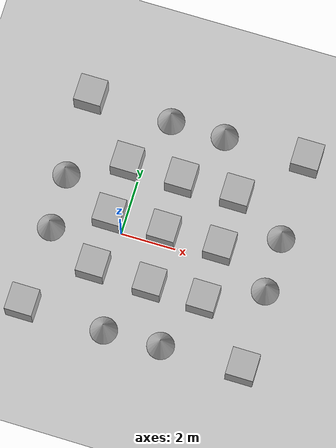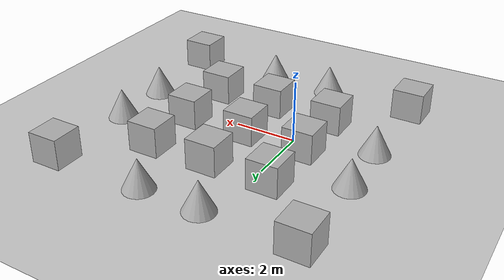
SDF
<sdf version='1.10'>
  <world name='empty'>
    <physics name='1ms' type='ignored'>
      <max_step_size>0.001</max_step_size>
      <real_time_factor>1</real_time_factor>
      <real_time_update_rate>1000</real_time_update_rate>
    </physics>
    <plugin name='gz::sim::systems::Physics' filename='gz-sim-physics-system'/>
    <plugin name='gz::sim::systems::UserCommands' filename='gz-sim-user-commands-system'/>
    <plugin name='gz::sim::systems::SceneBroadcaster' filename='gz-sim-scene-broadcaster-system'/>
    <plugin name='gz::sim::systems::Contact' filename='gz-sim-contact-system'/>
    <gravity>0 0 -9.8000000000000007</gravity>
    <magnetic_field>5.5644999999999998e-06 2.2875799999999999e-05 -4.2388400000000002e-05</magnetic_field>
    <atmosphere type='adiabatic'/>
    <scene>
      <ambient>0.400000006 0.400000006 0.400000006 1</ambient>
      <background>0.699999988 0.699999988 0.699999988 1</background>
      <shadows>true</shadows>
    </scene>
    <model name='ground_plane'>
      <static>true</static>
      <link name='link'>
        <collision name='collision'>
          <geometry>
            <plane>
              <normal>0 0 1</normal>
              <size>100 100</size>
            </plane>
          </geometry>
          <surface>
            <friction>
              <ode/>
            </friction>
            <bounce/>
            <contact/>
          </surface>
        </collision>
        <visual name='visual'>
          <geometry>
            <plane>
              <normal>0 0 1</normal>
              <size>100 100</size>
            </plane>
          </geometry>
          <material>
            <ambient>0.800000012 0.800000012 0.800000012 1</ambient>
            <diffuse>0.800000012 0.800000012 0.800000012 1</diffuse>
            <specular>0.800000012 0.800000012 0.800000012 1</specular>
          </material>
        </visual>
        <pose>0 0 0 0 0 0</pose>
        <inertial>
          <pose>0 0 0 0 0 0</pose>
          <mass>1</mass>
          <inertia>
            <ixx>1</ixx>
            <ixy>0</ixy>
            <ixz>0</ixz>
            <iyy>1</iyy>
            <iyz>0</iyz>
            <izz>1</izz>
          </inertia>
        </inertial>
        <enable_wind>false</enable_wind>
      </link>
      <pose>0 0 0 0 0 0</pose>
      <self_collide>false</self_collide>
    </model>
    <model name='box'>
      <pose>1.4828880421105337 2.4810039725915605 0.5 0 0 0</pose>
      <link name='box_link'>
        <inertial>
          <inertia>
            <ixx>0.16666</ixx>
            <ixy>0</ixy>
            <ixz>0</ixz>
            <iyy>0.16666</iyy>
            <iyz>0</iyz>
            <izz>0.16666</izz>
          </inertia>
          <mass>1</mass>
          <pose>0 0 0 0 0 0</pose>
        </inertial>
        <collision name='box_collision'>
          <geometry>
            <box>
              <size>1 1 1</size>
            </box>
          </geometry>
          <surface>
            <friction>
              <ode/>
            </friction>
            <bounce/>
            <contact/>
          </surface>
        </collision>
        <visual name='box_visual'>
          <geometry>
            <box>
              <size>1 1 1</size>
            </box>
          </geometry>
          <material>
            <ambient>0.300000012 0.300000012 0.300000012 1</ambient>
            <diffuse>0.699999988 0.699999988 0.699999988 1</diffuse>
            <specular>1 1 1 1</specular>
          </material>
        </visual>
        <pose>0 0 0 0 0 0</pose>
        <enable_wind>false</enable_wind>
      </link>
      <static>false</static>
      <self_collide>false</self_collide>
    </model>
    <model name='box_0'>
      <pose>-0.53700657123775297 2.4965526327853604 0.5 0 0 0</pose>
      <link name='box_link'>
        <inertial>
          <inertia>
            <ixx>0.16666</ixx>
            <ixy>0</ixy>
            <ixz>0</ixz>
            <iyy>0.16666</iyy>
            <iyz>0</iyz>
            <izz>0.16666</izz>
          </inertia>
          <mass>1</mass>
          <pose>0 0 0 0 0 0</pose>
        </inertial>
        <collision name='box_collision'>
          <geometry>
            <box>
              <size>1 1 1</size>
            </box>
          </geometry>
          <surface>
            <friction>
              <ode/>
            </friction>
            <bounce/>
            <contact/>
          </surface>
        </collision>
        <visual name='box_visual'>
          <geometry>
            <box>
              <size>1 1 1</size>
            </box>
          </geometry>
          <material>
            <ambient>0.300000012 0.300000012 0.300000012 1</ambient>
            <diffuse>0.699999988 0.699999988 0.699999988 1</diffuse>
            <specular>1 1 1 1</specular>
          </material>
        </visual>
        <pose>0 0 0 0 0 0</pose>
        <enable_wind>false</enable_wind>
      </link>
      <static>false</static>
      <self_collide>false</self_collide>
    </model>
    <model name='box_1'>
      <pose>3.5292537159104498 2.4985450759173942 0.5 0 0 0</pose>
      <link name='box_link'>
        <inertial>
          <inertia>
            <ixx>0.16666</ixx>
            <ixy>0</ixy>
            <ixz>0</ixz>
            <iyy>0.16666</iyy>
            <iyz>0</iyz>
            <izz>0.16666</izz>
          </inertia>
          <mass>1</mass>
          <pose>0 0 0 0 0 0</pose>
        </inertial>
        <collision name='box_collision'>
          <geometry>
            <box>
              <size>1 1 1</size>
            </box>
          </geometry>
          <surface>
            <friction>
              <ode/>
            </friction>
            <bounce/>
            <contact/>
          </surface>
        </collision>
        <visual name='box_visual'>
          <geometry>
            <box>
              <size>1 1 1</size>
            </box>
          </geometry>
          <material>
            <ambient>0.300000012 0.300000012 0.300000012 1</ambient>
            <diffuse>0.699999988 0.699999988 0.699999988 1</diffuse>
            <specular>1 1 1 1</specular>
          </material>
        </visual>
        <pose>0 0 0 0 0 0</pose>
        <enable_wind>false</enable_wind>
      </link>
      <static>false</static>
      <self_collide>false</self_collide>
    </model>
    <model name='box_2'>
      <pose>3.5005344420189459 0.4923439226642437 0.5 0 0 0</pose>
      <link name='box_link'>
        <inertial>
          <inertia>
            <ixx>0.16666</ixx>
            <ixy>0</ixy>
            <ixz>0</ixz>
            <iyy>0.16666</iyy>
            <iyz>0</iyz>
            <izz>0.16666</izz>
          </inertia>
          <mass>1</mass>
          <pose>0 0 0 0 0 0</pose>
        </inertial>
        <collision name='box_collision'>
          <geometry>
            <box>
              <size>1 1 1</size>
            </box>
          </geometry>
          <surface>
            <friction>
              <ode/>
            </friction>
            <bounce/>
            <contact/>
          </surface>
        </collision>
        <visual name='box_visual'>
          <geometry>
            <box>
              <size>1 1 1</size>
            </box>
          </geometry>
          <material>
            <ambient>0.300000012 0.300000012 0.300000012 1</ambient>
            <diffuse>0.699999988 0.699999988 0.699999988 1</diffuse>
            <specular>1 1 1 1</specular>
          </material>
        </visual>
        <pose>0 0 0 0 0 0</pose>
        <enable_wind>false</enable_wind>
      </link>
      <static>false</static>
      <self_collide>false</self_collide>
    </model>
    <model name='box_3'>
      <pose>1.4412395514182155 0.4785392850820277 0.5 0 0 0</pose>
      <link name='box_link'>
        <inertial>
          <inertia>
            <ixx>0.16666</ixx>
            <ixy>0</ixy>
            <ixz>0</ixz>
            <iyy>0.16666</iyy>
            <iyz>0</iyz>
            <izz>0.16666</izz>
          </inertia>
          <mass>1</mass>
          <pose>0 0 0 0 0 0</pose>
        </inertial>
        <collision name='box_collision'>
          <geometry>
            <box>
              <size>1 1 1</size>
            </box>
          </geometry>
          <surface>
            <friction>
              <ode/>
            </friction>
            <bounce/>
            <contact/>
          </surface>
        </collision>
        <visual name='box_visual'>
          <geometry>
            <box>
              <size>1 1 1</size>
            </box>
          </geometry>
          <material>
            <ambient>0.300000012 0.300000012 0.300000012 1</ambient>
            <diffuse>0.699999988 0.699999988 0.699999988 1</diffuse>
            <specular>1 1 1 1</specular>
          </material>
        </visual>
        <pose>0 0 0 0 0 0</pose>
        <enable_wind>false</enable_wind>
      </link>
      <static>false</static>
      <self_collide>false</self_collide>
    </model>
    <model name='box_4'>
      <pose>-0.5770987817680675 0.48420760536685215 0.5 0 0 0</pose>
      <link name='box_link'>
        <inertial>
          <inertia>
            <ixx>0.16666</ixx>
            <ixy>0</ixy>
            <ixz>0</ixz>
            <iyy>0.16666</iyy>
            <iyz>0</iyz>
            <izz>0.16666</izz>
          </inertia>
          <mass>1</mass>
          <pose>0 0 0 0 0 0</pose>
        </inertial>
        <collision name='box_collision'>
          <geometry>
            <box>
              <size>1 1 1</size>
            </box>
          </geometry>
          <surface>
            <friction>
              <ode/>
            </friction>
            <bounce/>
            <contact/>
          </surface>
        </collision>
        <visual name='box_visual'>
          <geometry>
            <box>
              <size>1 1 1</size>
            </box>
          </geometry>
          <material>
            <ambient>0.300000012 0.300000012 0.300000012 1</ambient>
            <diffuse>0.699999988 0.699999988 0.699999988 1</diffuse>
            <specular>1 1 1 1</specular>
          </material>
        </visual>
        <pose>0 0 0 0 0 0</pose>
        <enable_wind>false</enable_wind>
      </link>
      <static>false</static>
      <self_collide>false</self_collide>
    </model>
    <model name='box_5'>
      <pose>3.5005335865170384 -1.5239197140344469 0.5 0 0 0</pose>
      <link name='box_link'>
        <inertial>
          <inertia>
            <ixx>0.16666</ixx>
            <ixy>0</ixy>
            <ixz>0</ixz>
            <iyy>0.16666</iyy>
            <iyz>0</iyz>
            <izz>0.16666</izz>
          </inertia>
          <mass>1</mass>
          <pose>0 0 0 0 0 0</pose>
        </inertial>
        <collision name='box_collision'>
          <geometry>
            <box>
              <size>1 1 1</size>
            </box>
          </geometry>
          <surface>
            <friction>
              <ode/>
            </friction>
            <bounce/>
            <contact/>
          </surface>
        </collision>
        <visual name='box_visual'>
          <geometry>
            <box>
              <size>1 1 1</size>
            </box>
          </geometry>
          <material>
            <ambient>0.300000012 0.300000012 0.300000012 1</ambient>
            <diffuse>0.699999988 0.699999988 0.699999988 1</diffuse>
            <specular>1 1 1 1</specular>
          </material>
        </visual>
        <pose>0 0 0 0 0 0</pose>
        <enable_wind>false</enable_wind>
      </link>
      <static>false</static>
      <self_collide>false</self_collide>
    </model>
    <model name='box_6'>
      <pose>1.524297242688526 -1.5128189390418358 0.5 0 0 0</pose>
      <link name='box_link'>
        <inertial>
          <inertia>
            <ixx>0.16666</ixx>
            <ixy>0</ixy>
            <ixz>0</ixz>
            <iyy>0.16666</iyy>
            <iyz>0</iyz>
            <izz>0.16666</izz>
          </inertia>
          <mass>1</mass>
          <pose>0 0 0 0 0 0</pose>
        </inertial>
        <collision name='box_collision'>
          <geometry>
            <box>
              <size>1 1 1</size>
            </box>
          </geometry>
          <surface>
            <friction>
              <ode/>
            </friction>
            <bounce/>
            <contact/>
          </surface>
        </collision>
        <visual name='box_visual'>
          <geometry>
            <box>
              <size>1 1 1</size>
            </box>
          </geometry>
          <material>
            <ambient>0.300000012 0.300000012 0.300000012 1</ambient>
            <diffuse>0.699999988 0.699999988 0.699999988 1</diffuse>
            <specular>1 1 1 1</specular>
          </material>
        </visual>
        <pose>0 0 0 0 0 0</pose>
        <enable_wind>false</enable_wind>
      </link>
      <static>false</static>
      <self_collide>false</self_collide>
    </model>
    <model name='box_7'>
      <pose>-0.57709897435358837 -1.4632626034554093 0.5 0 0 0</pose>
      <link name='box_link'>
        <inertial>
          <inertia>
            <ixx>0.16666</ixx>
            <ixy>0</ixy>
            <ixz>0</ixz>
            <iyy>0.16666</iyy>
            <iyz>0</iyz>
            <izz>0.16666</izz>
          </inertia>
          <mass>1</mass>
          <pose>0 0 0 0 0 0</pose>
        </inertial>
        <collision name='box_collision'>
          <geometry>
            <box>
              <size>1 1 1</size>
            </box>
          </geometry>
          <surface>
            <friction>
              <ode/>
            </friction>
            <bounce/>
            <contact/>
          </surface>
        </collision>
        <visual name='box_visual'>
          <geometry>
            <box>
              <size>1 1 1</size>
            </box>
          </geometry>
          <material>
            <ambient>0.300000012 0.300000012 0.300000012 1</ambient>
            <diffuse>0.699999988 0.699999988 0.699999988 1</diffuse>
            <specular>1 1 1 1</specular>
          </material>
        </visual>
        <pose>0 0 0 0 0 0</pose>
        <enable_wind>false</enable_wind>
      </link>
      <static>false</static>
      <self_collide>false</self_collide>
    </model>
    <model name='cone'>
      <pose>5.4919135804277577 1.4723912280801608 0.5 0 0 0</pose>
      <link name='cone_link'>
        <inertial>
          <inertia>
            <ixx>0.074999999999999997</ixx>
            <ixy>0</ixy>
            <ixz>0</ixz>
            <iyy>0.074999999999999997</iyy>
            <iyz>0</iyz>
            <izz>0.074999999999999997</izz>
          </inertia>
          <mass>1</mass>
          <pose>0 0 0 0 0 0</pose>
        </inertial>
        <collision name='cone_collision'>
          <geometry>
            <cone>
              <radius>0.5</radius>
              <length>1</length>
            </cone>
          </geometry>
          <surface>
            <friction>
              <ode/>
            </friction>
            <bounce/>
            <contact/>
          </surface>
        </collision>
        <visual name='cone_visual'>
          <geometry>
            <cone>
              <radius>0.5</radius>
              <length>1</length>
            </cone>
          </geometry>
          <material>
            <ambient>0.300000012 0.300000012 0.300000012 1</ambient>
            <diffuse>0.699999988 0.699999988 0.699999988 1</diffuse>
            <specular>1 1 1 1</specular>
          </material>
        </visual>
        <pose>0 0 0 0 0 0</pose>
        <enable_wind>false</enable_wind>
      </link>
      <static>false</static>
      <self_collide>false</self_collide>
    </model>
    <model name='cone_0'>
      <pose>5.4919131794701119 -0.53295077957133841 0.5 0 0 0</pose>
      <link name='cone_link'>
        <inertial>
          <inertia>
            <ixx>0.074999999999999997</ixx>
            <ixy>0</ixy>
            <ixz>0</ixz>
            <iyy>0.074999999999999997</iyy>
            <iyz>0</iyz>
            <izz>0.074999999999999997</izz>
          </inertia>
          <mass>1</mass>
          <pose>0 0 0 0 0 0</pose>
        </inertial>
        <collision name='cone_collision'>
          <geometry>
            <cone>
              <radius>0.5</radius>
              <length>1</length>
            </cone>
          </geometry>
          <surface>
            <friction>
              <ode/>
            </friction>
            <bounce/>
            <contact/>
          </surface>
        </collision>
        <visual name='cone_visual'>
          <geometry>
            <cone>
              <radius>0.5</radius>
              <length>1</length>
            </cone>
          </geometry>
          <material>
            <ambient>0.300000012 0.300000012 0.300000012 1</ambient>
            <diffuse>0.699999988 0.699999988 0.699999988 1</diffuse>
            <specular>1 1 1 1</specular>
          </material>
        </visual>
        <pose>0 0 0 0 0 0</pose>
        <enable_wind>false</enable_wind>
      </link>
      <static>false</static>
      <self_collide>false</self_collide>
    </model>
    <model name='cone_1'>
      <pose>2.5286564845935651 -3.4876459468678238 0.5 0 0 0</pose>
      <link name='cone_link'>
        <inertial>
          <inertia>
            <ixx>0.074999999999999997</ixx>
            <ixy>0</ixy>
            <ixz>0</ixz>
            <iyy>0.074999999999999997</iyy>
            <iyz>0</iyz>
            <izz>0.074999999999999997</izz>
          </inertia>
          <mass>1</mass>
          <pose>0 0 0 0 0 0</pose>
        </inertial>
        <collision name='cone_collision'>
          <geometry>
            <cone>
              <radius>0.5</radius>
              <length>1</length>
            </cone>
          </geometry>
          <surface>
            <friction>
              <ode/>
            </friction>
            <bounce/>
            <contact/>
          </surface>
        </collision>
        <visual name='cone_visual'>
          <geometry>
            <cone>
              <radius>0.5</radius>
              <length>1</length>
            </cone>
          </geometry>
          <material>
            <ambient>0.300000012 0.300000012 0.300000012 1</ambient>
            <diffuse>0.699999988 0.699999988 0.699999988 1</diffuse>
            <specular>1 1 1 1</specular>
          </material>
        </visual>
        <pose>0 0 0 0 0 0</pose>
        <enable_wind>false</enable_wind>
      </link>
      <static>false</static>
      <self_collide>false</self_collide>
    </model>
    <model name='cone_2'>
      <pose>0.45239309520019244 -3.5434380235264826 0.5 0 0 0</pose>
      <link name='cone_link'>
        <inertial>
          <inertia>
            <ixx>0.074999999999999997</ixx>
            <ixy>0</ixy>
            <ixz>0</ixz>
            <iyy>0.074999999999999997</iyy>
            <iyz>0</iyz>
            <izz>0.074999999999999997</izz>
          </inertia>
          <mass>1</mass>
          <pose>0 0 0 0 0 0</pose>
        </inertial>
        <collision name='cone_collision'>
          <geometry>
            <cone>
              <radius>0.5</radius>
              <length>1</length>
            </cone>
          </geometry>
          <surface>
            <friction>
              <ode/>
            </friction>
            <bounce/>
            <contact/>
          </surface>
        </collision>
        <visual name='cone_visual'>
          <geometry>
            <cone>
              <radius>0.5</radius>
              <length>1</length>
            </cone>
          </geometry>
          <material>
            <ambient>0.300000012 0.300000012 0.300000012 1</ambient>
            <diffuse>0.699999988 0.699999988 0.699999988 1</diffuse>
            <specular>1 1 1 1</specular>
          </material>
        </visual>
        <pose>0 0 0 0 0 0</pose>
        <enable_wind>false</enable_wind>
      </link>
      <static>false</static>
      <self_collide>false</self_collide>
    </model>
    <model name='cone_3'>
      <pose>-2.4608033164727745 -0.51204537671798833 0.5 0 0 0</pose>
      <link name='cone_link'>
        <inertial>
          <inertia>
            <ixx>0.074999999999999997</ixx>
            <ixy>0</ixy>
            <ixz>0</ixz>
            <iyy>0.074999999999999997</iyy>
            <iyz>0</iyz>
            <izz>0.074999999999999997</izz>
          </inertia>
          <mass>1</mass>
          <pose>0 0 0 0 0 0</pose>
        </inertial>
        <collision name='cone_collision'>
          <geometry>
            <cone>
              <radius>0.5</radius>
              <length>1</length>
            </cone>
          </geometry>
          <surface>
            <friction>
              <ode/>
            </friction>
            <bounce/>
            <contact/>
          </surface>
        </collision>
        <visual name='cone_visual'>
          <geometry>
            <cone>
              <radius>0.5</radius>
              <length>1</length>
            </cone>
          </geometry>
          <material>
            <ambient>0.300000012 0.300000012 0.300000012 1</ambient>
            <diffuse>0.699999988 0.699999988 0.699999988 1</diffuse>
            <specular>1 1 1 1</specular>
          </material>
        </visual>
        <pose>0 0 0 0 0 0</pose>
        <enable_wind>false</enable_wind>
      </link>
      <static>false</static>
      <self_collide>false</self_collide>
    </model>
    <model name='cone_4'>
      <pose>-2.5272255357782667 1.5071935506073375 0.5 0 0 0</pose>
      <link name='cone_link'>
        <inertial>
          <inertia>
            <ixx>0.074999999999999997</ixx>
            <ixy>0</ixy>
            <ixz>0</ixz>
            <iyy>0.074999999999999997</iyy>
            <iyz>0</iyz>
            <izz>0.074999999999999997</izz>
          </inertia>
          <mass>1</mass>
          <pose>0 0 0 0 0 0</pose>
        </inertial>
        <collision name='cone_collision'>
          <geometry>
            <cone>
              <radius>0.5</radius>
              <length>1</length>
            </cone>
          </geometry>
          <surface>
            <friction>
              <ode/>
            </friction>
            <bounce/>
            <contact/>
          </surface>
        </collision>
        <visual name='cone_visual'>
          <geometry>
            <cone>
              <radius>0.5</radius>
              <length>1</length>
            </cone>
          </geometry>
          <material>
            <ambient>0.300000012 0.300000012 0.300000012 1</ambient>
            <diffuse>0.699999988 0.699999988 0.699999988 1</diffuse>
            <specular>1 1 1 1</specular>
          </material>
        </visual>
        <pose>0 0 0 0 0 0</pose>
        <enable_wind>false</enable_wind>
      </link>
      <static>false</static>
      <self_collide>false</self_collide>
    </model>
    <model name='cone_5'>
      <pose>0.48390351482456317 4.5128153257633388 0.5 0 0 0</pose>
      <link name='cone_link'>
        <inertial>
          <inertia>
            <ixx>0.074999999999999997</ixx>
            <ixy>0</ixy>
            <ixz>0</ixz>
            <iyy>0.074999999999999997</iyy>
            <iyz>0</iyz>
            <izz>0.074999999999999997</izz>
          </inertia>
          <mass>1</mass>
          <pose>0 0 0 0 0 0</pose>
        </inertial>
        <collision name='cone_collision'>
          <geometry>
            <cone>
              <radius>0.5</radius>
              <length>1</length>
            </cone>
          </geometry>
          <surface>
            <friction>
              <ode/>
            </friction>
            <bounce/>
            <contact/>
          </surface>
        </collision>
        <visual name='cone_visual'>
          <geometry>
            <cone>
              <radius>0.5</radius>
              <length>1</length>
            </cone>
          </geometry>
          <material>
            <ambient>0.300000012 0.300000012 0.300000012 1</ambient>
            <diffuse>0.699999988 0.699999988 0.699999988 1</diffuse>
            <specular>1 1 1 1</specular>
          </material>
        </visual>
        <pose>0 0 0 0 0 0</pose>
        <enable_wind>false</enable_wind>
      </link>
      <static>false</static>
      <self_collide>false</self_collide>
    </model>
    <model name='cone_6'>
      <pose>2.4942631751528523 4.503716985671872 0.5 0 0 0</pose>
      <link name='cone_link'>
        <inertial>
          <inertia>
            <ixx>0.074999999999999997</ixx>
            <ixy>0</ixy>
            <ixz>0</ixz>
            <iyy>0.074999999999999997</iyy>
            <iyz>0</iyz>
            <izz>0.074999999999999997</izz>
          </inertia>
          <mass>1</mass>
          <pose>0 0 0 0 0 0</pose>
        </inertial>
        <collision name='cone_collision'>
          <geometry>
            <cone>
              <radius>0.5</radius>
              <length>1</length>
            </cone>
          </geometry>
          <surface>
            <friction>
              <ode/>
            </friction>
            <bounce/>
            <contact/>
          </surface>
        </collision>
        <visual name='cone_visual'>
          <geometry>
            <cone>
              <radius>0.5</radius>
              <length>1</length>
            </cone>
          </geometry>
          <material>
            <ambient>0.300000012 0.300000012 0.300000012 1</ambient>
            <diffuse>0.699999988 0.699999988 0.699999988 1</diffuse>
            <specular>1 1 1 1</specular>
          </material>
        </visual>
        <pose>0 0 0 0 0 0</pose>
        <enable_wind>false</enable_wind>
      </link>
      <static>false</static>
      <self_collide>false</self_collide>
    </model>
    <model name='box_8'>
      <pose>5.5527287155288541 4.4788034592104582 0.5 0 0 0</pose>
      <link name='box_link'>
        <inertial>
          <inertia>
            <ixx>0.16666</ixx>
            <ixy>0</ixy>
            <ixz>0</ixz>
            <iyy>0.16666</iyy>
            <iyz>0</iyz>
            <izz>0.16666</izz>
          </inertia>
          <mass>1</mass>
          <pose>0 0 0 0 0 0</pose>
        </inertial>
        <collision name='box_collision'>
          <geometry>
            <box>
              <size>1 1 1</size>
            </box>
          </geometry>
          <surface>
            <friction>
              <ode/>
            </friction>
            <bounce/>
            <contact/>
          </surface>
        </collision>
        <visual name='box_visual'>
          <geometry>
            <box>
              <size>1 1 1</size>
            </box>
          </geometry>
          <material>
            <ambient>0.300000012 0.300000012 0.300000012 1</ambient>
            <diffuse>0.699999988 0.699999988 0.699999988 1</diffuse>
            <specular>1 1 1 1</specular>
          </material>
        </visual>
        <pose>0 0 0 0 0 0</pose>
        <enable_wind>false</enable_wind>
      </link>
      <static>false</static>
      <self_collide>false</self_collide>
    </model>
    <model name='box_9'>
      <pose>-2.5272251107712709 4.5151793897225634 0.5 0 0 0</pose>
      <link name='box_link'>
        <inertial>
          <inertia>
            <ixx>0.16666</ixx>
            <ixy>0</ixy>
            <ixz>0</ixz>
            <iyy>0.16666</iyy>
            <iyz>0</iyz>
            <izz>0.16666</izz>
          </inertia>
          <mass>1</mass>
          <pose>0 0 0 0 0 0</pose>
        </inertial>
        <collision name='box_collision'>
          <geometry>
            <box>
              <size>1 1 1</size>
            </box>
          </geometry>
          <surface>
            <friction>
              <ode/>
            </friction>
            <bounce/>
            <contact/>
          </surface>
        </collision>
        <visual name='box_visual'>
          <geometry>
            <box>
              <size>1 1 1</size>
            </box>
          </geometry>
          <material>
            <ambient>0.300000012 0.300000012 0.300000012 1</ambient>
            <diffuse>0.699999988 0.699999988 0.699999988 1</diffuse>
            <specular>1 1 1 1</specular>
          </material>
        </visual>
        <pose>0 0 0 0 0 0</pose>
        <enable_wind>false</enable_wind>
      </link>
      <static>false</static>
      <self_collide>false</self_collide>
    </model>
    <model name='box_10'>
      <pose>5.5122003771296679 -3.4670304625751971 0.5 0 0 0</pose>
      <link name='box_link'>
        <inertial>
          <inertia>
            <ixx>0.16666</ixx>
            <ixy>0</ixy>
            <ixz>0</ixz>
            <iyy>0.16666</iyy>
            <iyz>0</iyz>
            <izz>0.16666</izz>
          </inertia>
          <mass>1</mass>
          <pose>0 0 0 0 0 0</pose>
        </inertial>
        <collision name='box_collision'>
          <geometry>
            <box>
              <size>1 1 1</size>
            </box>
          </geometry>
          <surface>
            <friction>
              <ode/>
            </friction>
            <bounce/>
            <contact/>
          </surface>
        </collision>
        <visual name='box_visual'>
          <geometry>
            <box>
              <size>1 1 1</size>
            </box>
          </geometry>
          <material>
            <ambient>0.300000012 0.300000012 0.300000012 1</ambient>
            <diffuse>0.699999988 0.699999988 0.699999988 1</diffuse>
            <specular>1 1 1 1</specular>
          </material>
        </visual>
        <pose>0 0 0 0 0 0</pose>
        <enable_wind>false</enable_wind>
      </link>
      <static>false</static>
      <self_collide>false</self_collide>
    </model>
    <model name='box_11'>
      <pose>-2.5272256846127572 -3.5018015582808606 0.5 0 0 0</pose>
      <link name='box_link'>
        <inertial>
          <inertia>
            <ixx>0.16666</ixx>
            <ixy>0</ixy>
            <ixz>0</ixz>
            <iyy>0.16666</iyy>
            <iyz>0</iyz>
            <izz>0.16666</izz>
          </inertia>
          <mass>1</mass>
          <pose>0 0 0 0 0 0</pose>
        </inertial>
        <collision name='box_collision'>
          <geometry>
            <box>
              <size>1 1 1</size>
            </box>
          </geometry>
          <surface>
            <friction>
              <ode/>
            </friction>
            <bounce/>
            <contact/>
          </surface>
        </collision>
        <visual name='box_visual'>
          <geometry>
            <box>
              <size>1 1 1</size>
            </box>
          </geometry>
          <material>
            <ambient>0.300000012 0.300000012 0.300000012 1</ambient>
            <diffuse>0.699999988 0.699999988 0.699999988 1</diffuse>
            <specular>1 1 1 1</specular>
          </material>
        </visual>
        <pose>0 0 0 0 0 0</pose>
        <enable_wind>false</enable_wind>
      </link>
      <static>false</static>
      <self_collide>false</self_collide>
    </model>
    <light name='sun' type='directional'>
      <pose>0 0 10 0 0 0</pose>
      <cast_shadows>true</cast_shadows>
      <intensity>1</intensity>
      <direction>-0.5 0.10000000000000001 -0.90000000000000002</direction>
      <diffuse>0.800000012 0.800000012 0.800000012 1</diffuse>
      <specular>0.200000003 0.200000003 0.200000003 1</specular>
      <attenuation>
        <range>1000</range>
        <linear>0.0099999997764825821</linear>
        <constant>0.89999997615814209</constant>
        <quadratic>0.0010000000474974513</quadratic>
      </attenuation>
      <spot>
        <inner_angle>0</inner_angle>
        <outer_angle>0</outer_angle>
        <falloff>0</falloff>
      </spot>
    </light>
  </world>
</sdf>
